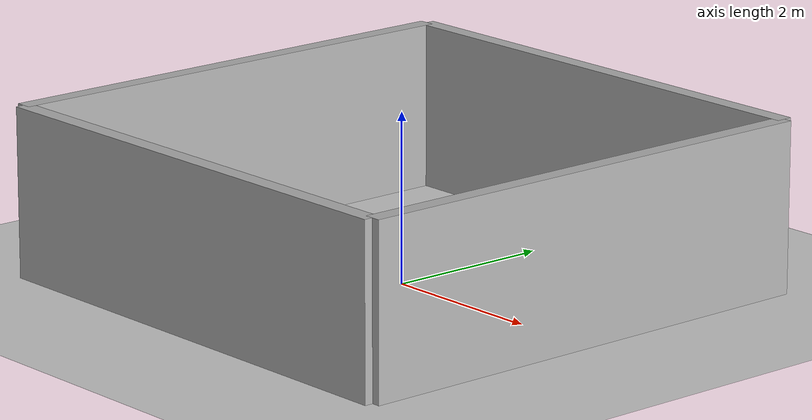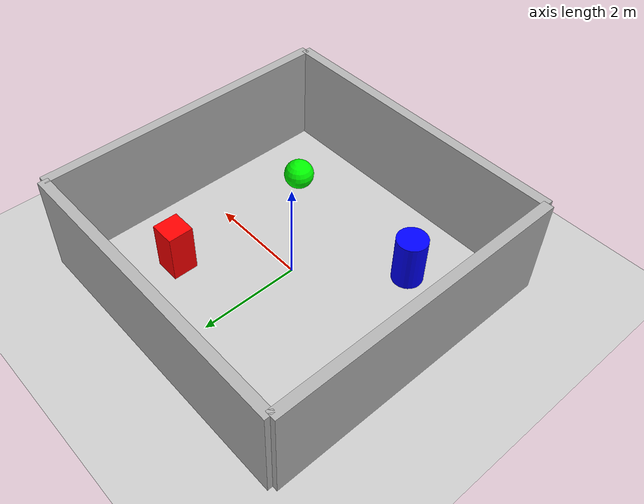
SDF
<?xml version="1.0" ?>
<sdf version="1.6">
  <world name="demo_world">

    <!-- Physics -->
    <physics name="default_physics" default="0" type="ode">
      <gravity>0 0 -9.8066</gravity>
      <ode>
        <solver>
          <type>quick</type>
          <iters>150</iters>
          <sor>1.3</sor>
        </solver>
        <constraints>
          <cfm>0.00001</cfm>
          <erp>0.2</erp>
          <contact_max_correcting_vel>1000</contact_max_correcting_vel>
          <contact_surface_layer>0.01</contact_surface_layer>
        </constraints>
      </ode>
      <max_step_size>0.004</max_step_size>
      <real_time_factor>1</real_time_factor>
      <real_time_update_rate>250</real_time_update_rate>
    </physics>

    <!-- Lighting -->
    <include>
      <uri>model://sun</uri>
    </include>

    <!-- Ground plane -->
    <include>
      <uri>model://ground_plane</uri>
    </include>

    <!-- Walls to create a room -->
    <model name="wall_1">
      <pose>3 0 1 0 0 0</pose>
      <static>true</static>
      <link name="link">
        <visual name="visual">
          <geometry>
            <box>
              <size>0.2 6 2</size>
            </box>
          </geometry>
          <material>
            <ambient>0.7 0.7 0.7 1</ambient>
            <diffuse>0.7 0.7 0.7 1</diffuse>
          </material>
        </visual>
        <collision name="collision">
          <geometry>
            <box>
              <size>0.2 6 2</size>
            </box>
          </geometry>
        </collision>
      </link>
    </model>

    <model name="wall_2">
      <pose>-3 0 1 0 0 0</pose>
      <static>true</static>
      <link name="link">
        <visual name="visual">
          <geometry>
            <box>
              <size>0.2 6 2</size>
            </box>
          </geometry>
          <material>
            <ambient>0.7 0.7 0.7 1</ambient>
            <diffuse>0.7 0.7 0.7 1</diffuse>
          </material>
        </visual>
        <collision name="collision">
          <geometry>
            <box>
              <size>0.2 6 2</size>
            </box>
          </geometry>
        </collision>
      </link>
    </model>

    <model name="wall_3">
      <pose>0 3 1 0 0 0</pose>
      <static>true</static>
      <link name="link">
        <visual name="visual">
          <geometry>
            <box>
              <size>6 0.2 2</size>
            </box>
          </geometry>
          <material>
            <ambient>0.7 0.7 0.7 1</ambient>
            <diffuse>0.7 0.7 0.7 1</diffuse>
          </material>
        </visual>
        <collision name="collision">
          <geometry>
            <box>
              <size>6 0.2 2</size>
            </box>
          </geometry>
        </collision>
      </link>
    </model>

    <model name="wall_4">
      <pose>0 -3 1 0 0 0</pose>
      <static>true</static>
      <link name="link">
        <visual name="visual">
          <geometry>
            <box>
              <size>6 0.2 2</size>
            </box>
          </geometry>
          <material>
            <ambient>0.7 0.7 0.7 1</ambient>
            <diffuse>0.7 0.7 0.7 1</diffuse>
          </material>
        </visual>
        <collision name="collision">
          <geometry>
            <box>
              <size>6 0.2 2</size>
            </box>
          </geometry>
        </collision>
      </link>
    </model>

    <!-- Some objects for the robot to detect -->
    <model name="red_box">
      <pose>1.5 1.5 0.5 0 0 0</pose>
      <static>true</static>
      <link name="link">
        <visual name="visual">
          <geometry>
            <box>
              <size>0.5 0.5 1</size>
            </box>
          </geometry>
          <material>
            <ambient>1 0 0 1</ambient>
            <diffuse>1 0 0 1</diffuse>
          </material>
        </visual>
        <collision name="collision">
          <geometry>
            <box>
              <size>0.5 0.5 1</size>
            </box>
          </geometry>
        </collision>
      </link>
    </model>

    <model name="blue_cylinder">
      <pose>-1.5 -1.5 0.5 0 0 0</pose>
      <static>true</static>
      <link name="link">
        <visual name="visual">
          <geometry>
            <cylinder>
              <radius>0.3</radius>
              <length>1</length>
            </cylinder>
          </geometry>
          <material>
            <ambient>0 0 1 1</ambient>
            <diffuse>0 0 1 1</diffuse>
          </material>
        </visual>
        <collision name="collision">
          <geometry>
            <cylinder>
              <radius>0.3</radius>
              <length>1</length>
            </cylinder>
          </geometry>
        </collision>
      </link>
    </model>

    <model name="green_sphere">
      <pose>1.5 -1.5 0.5 0 0 0</pose>
      <static>true</static>
      <link name="link">
        <visual name="visual">
          <geometry>
            <sphere>
              <radius>0.3</radius>
            </sphere>
          </geometry>
          <material>
            <ambient>0 1 0 1</ambient>
            <diffuse>0 1 0 1</diffuse>
          </material>
        </visual>
        <collision name="collision">
          <geometry>
            <sphere>
              <radius>0.3</radius>
            </sphere>
          </geometry>
        </collision>
      </link>
    </model>

  </world>
</sdf>
